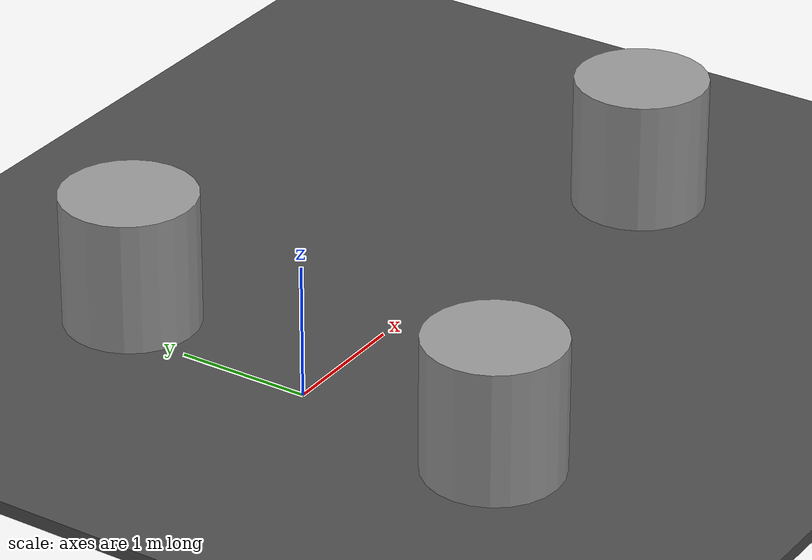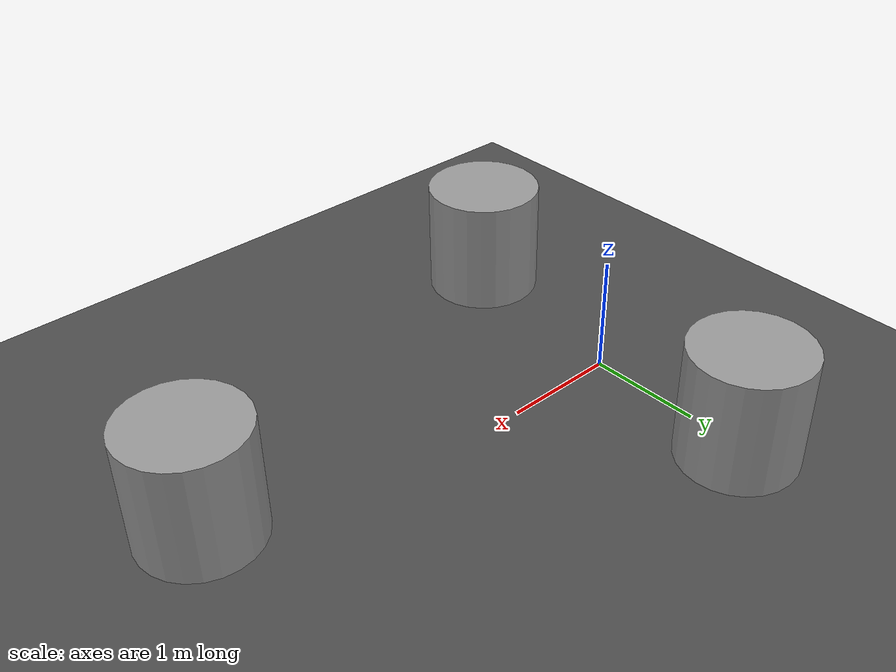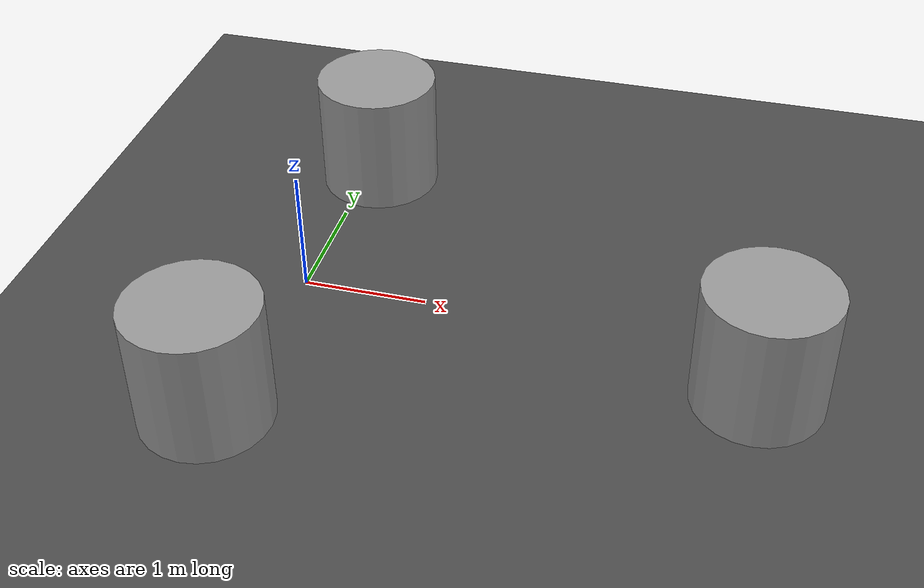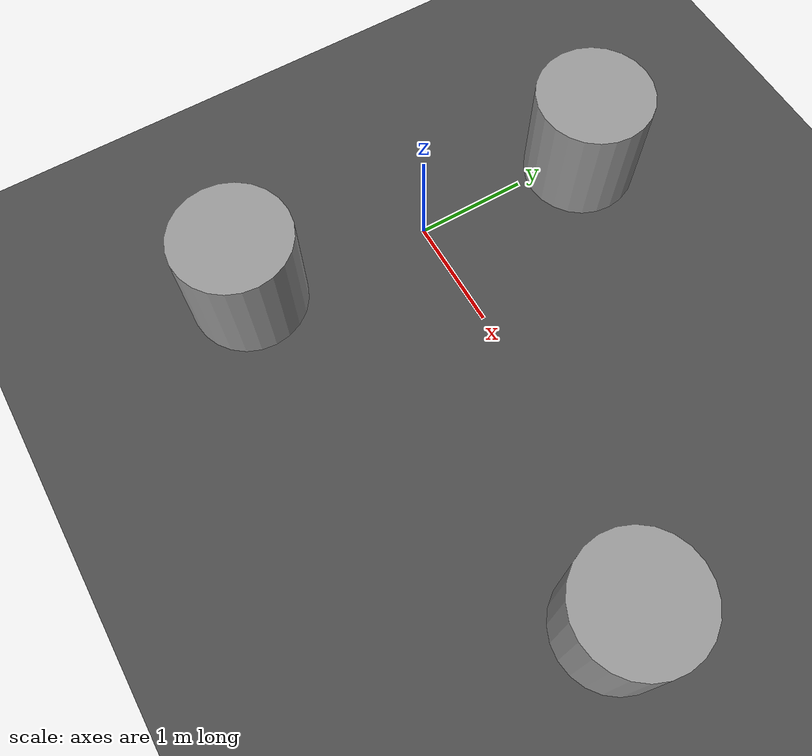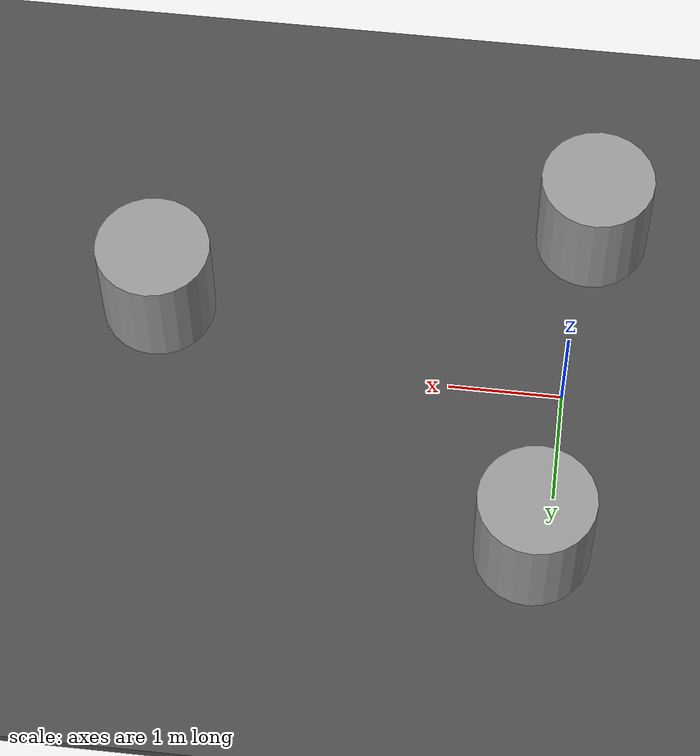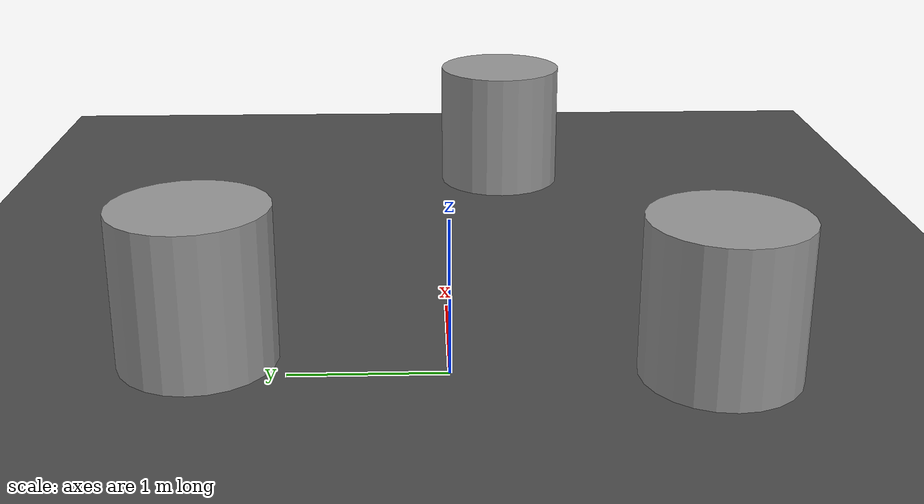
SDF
<sdf version="1.7">
 <world name="default">
  <light name="sun" type="directional">
   <pose>0 0 10 0 -0 0</pose>
   <diffuse>0.8 0.8 0.8 1</diffuse>
   <specular>0.2 0.2 0.2 1</specular>
   <attenuation>
    <range>1000</range>
    <constant>0.9</constant>
    <linear>0.01</linear>
    <quadratic>0.001</quadratic>
   </attenuation>
   <direction>-0.5 0.1 -0.9</direction>
   <spot><inner_angle>0</inner_angle><outer_angle>0</outer_angle><falloff>0</falloff></spot>
  </light>
  <model name="ground_plane">
   <static>1</static>
   <link name="link">
    <collision name="collision">
     <geometry><plane><normal>0 0 1</normal><size>100 100</size></plane></geometry>
     <surface><friction><ode><mu>100</mu><mu2>50</mu2></ode></friction></surface>
    </collision>
    <visual name="visual">
     <cast_shadows>0</cast_shadows>
     <geometry><plane><normal>0 0 1</normal><size>100 100</size></plane></geometry>
     <material>
      <script><uri>file://media/materials/scripts/gazebo.material</uri><name>Gazebo/Grey</name></script>
     </material>
    </visual>
   </link>
  </model>
  <model name="asphalt_plane">
   <static>1</static>
   <link name="link">
    <collision name="collision"><geometry><box><size>20 20 0.1</size></box></geometry></collision>
    <visual name="visual">
     <cast_shadows>0</cast_shadows>
     <geometry><box><size>20 20 0.1</size></box></geometry>
     <material>
      <script>
       <uri>model://asphalt_plane/materials/scripts</uri>
       <uri>model://asphalt_plane/materials/textures</uri>
       <name>vrc/asphalt</name>
      </script>
     </material>
    </visual>
   </link>
  </model>
  <physics name="default_physics" default="0" type="ode">
   <ode>
    <solver>
     <type>quick</type>
     <iters>10</iters>
     <sor>1.3</sor>
     <use_dynamic_moi_rescaling>0</use_dynamic_moi_rescaling>
    </solver>
    <constraints>
     <cfm>0</cfm>
     <erp>0.2</erp>
     <contact_max_correcting_vel>100</contact_max_correcting_vel>
     <contact_surface_layer>0.001</contact_surface_layer>
    </constraints>
   </ode>
   <max_step_size>0.004</max_step_size>
   <real_time_factor>1</real_time_factor>
   <real_time_update_rate>250</real_time_update_rate>
  </physics>
  <gravity>0 0 -9.8066</gravity>
  <magnetic_field>6e-06 2.3e-05 -4.2e-05</magnetic_field>
  <atmosphere type="adiabatic"/>
  <scene><ambient>0.4 0.4 0.4 1</ambient><background>0.7 0.7 0.7 1</background><shadows>1</shadows></scene>
  <spherical_coordinates>
   <surface_model>EARTH_WGS84</surface_model>
   <latitude_deg>0</latitude_deg>
   <longitude_deg>0</longitude_deg>
   <elevation>0</elevation>
   <heading_deg>0</heading_deg>
  </spherical_coordinates>
  <model name="unit_cylinder">
   <pose>-0.142522 -1.63082 0.549991 -6e-06 -3.2e-05 4.4e-05</pose>
   <link name="link">
    <inertial>
     <mass>1</mass>
     <inertia><ixx>0.145833</ixx><ixy>0</ixy><ixz>0</ixz><iyy>0.145833</iyy><iyz>0</iyz><izz>0.125</izz></inertia>
    </inertial>
    <collision name="collision">
     <geometry><cylinder><radius>0.5</radius><length>1</length></cylinder></geometry>
    </collision>
    <visual name="visual">
     <geometry><cylinder><radius>0.5</radius><length>1</length></cylinder></geometry>
     <material>
      <script><name>Gazebo/Grey</name><uri>file://media/materials/scripts/gazebo.material</uri></script>
     </material>
    </visual>
   </link>
  </model>
  <model name="unit_cylinder_0">
   <pose>0.144989 1.55242 0.549967 7e-06 6.6e-05 1.4e-05</pose>
   <link name="link">
    <inertial>
     <mass>1</mass>
     <inertia><ixx>0.145833</ixx><ixy>0</ixy><ixz>0</ixz><iyy>0.145833</iyy><iyz>0</iyz><izz>0.125</izz></inertia>
    </inertial>
    <collision name="collision">
     <geometry><cylinder><radius>0.5</radius><length>1</length></cylinder></geometry>
    </collision>
    <visual name="visual">
     <geometry><cylinder><radius>0.5</radius><length>1</length></cylinder></geometry>
     <material>
      <script><name>Gazebo/Grey</name><uri>file://media/materials/scripts/gazebo.material</uri></script>
     </material>
    </visual>
   </link>
  </model>
  <model name="unit_cylinder_1">
   <pose>3.64684 -0.520026 0.550007 -3e-06 -1.4e-05 -5.3e-05</pose>
   <link name="link">
    <inertial>
     <mass>1</mass>
     <inertia><ixx>0.145833</ixx><ixy>0</ixy><ixz>0</ixz><iyy>0.145833</iyy><iyz>0</iyz><izz>0.125</izz></inertia>
    </inertial>
    <collision name="collision">
     <geometry><cylinder><radius>0.5</radius><length>1</length></cylinder></geometry>
    </collision>
    <visual name="visual">
     <geometry><cylinder><radius>0.5</radius><length>1</length></cylinder></geometry>
     <material>
      <script><name>Gazebo/Grey</name><uri>file://media/materials/scripts/gazebo.material</uri></script>
     </material>
    </visual>
   </link>
  </model>
 </world>
</sdf>
